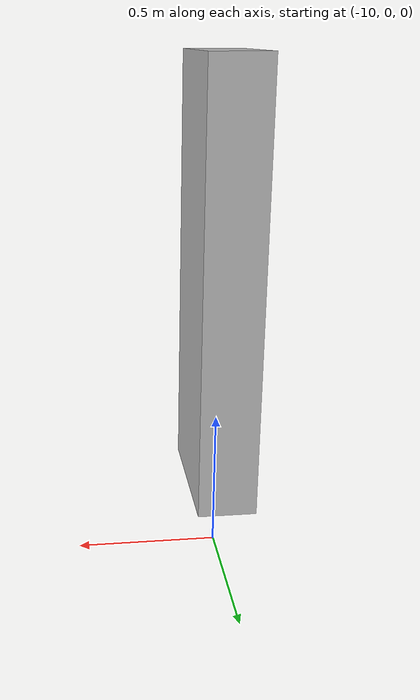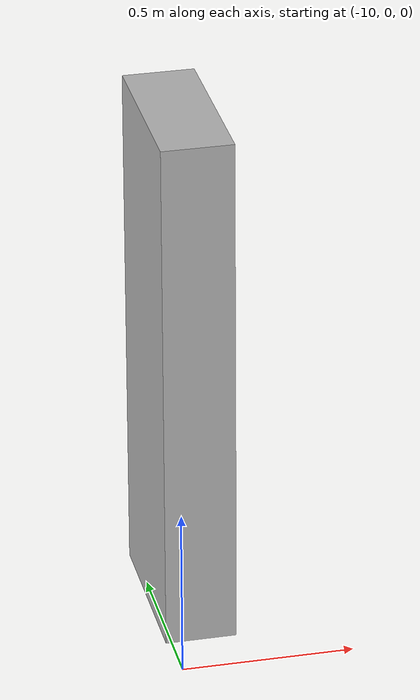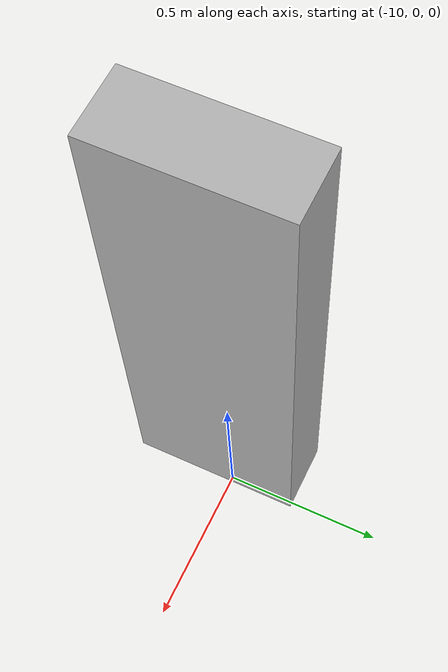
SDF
<?xml version='1.0'?>
<sdf version="1.6">
    <model name="child">
        <gravity>0</gravity>
        <pose>-10 0 1 0 0 0</pose>
        <link name="link">
        <collision name="collision">
            <geometry>
            <box>
                <size>0.2 0.5 1.5 </size>
            </box>
            </geometry>
        </collision>

        <visual name="visual">
            <geometry>
            <box>
                <size>0.2 0.5 1.5</size>
            </box>
            </geometry>
        </visual>
        </link>

        <plugin name="model_child" filename="libmodel_child.so">
            <velocity>2</velocity>
            <angle>45</angle>
        </plugin>
    </model>
</sdf>
